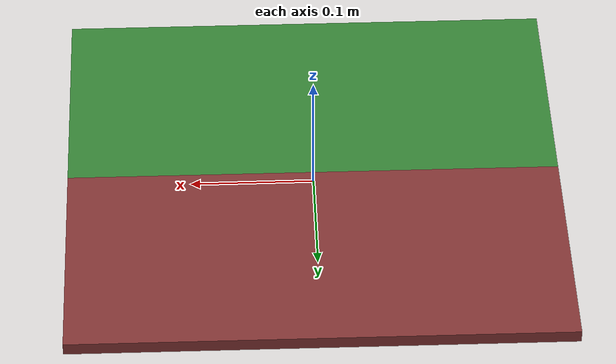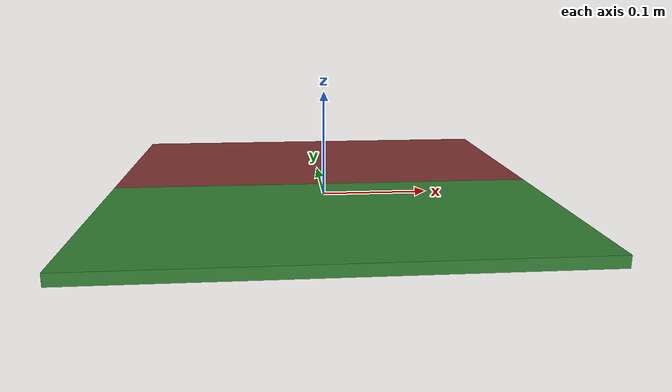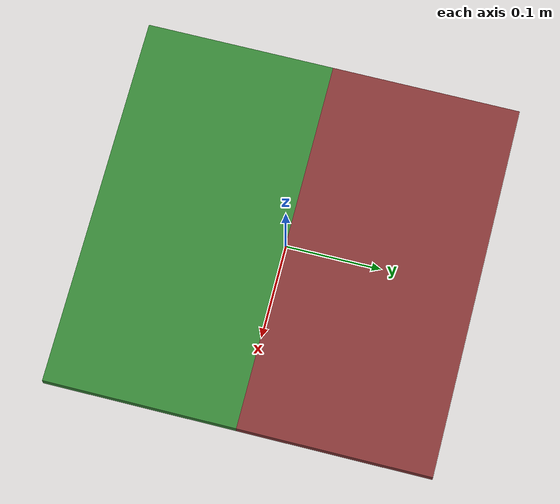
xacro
<?xml version="1.0"?>
<robot xmlns:xacro="http://www.ros.org/wiki/xacro">
    <xacro:property name="side_length" value="0.4"/>
    <xacro:property name="thickness" value="0.01"/>
    <xacro:property name="a_color_value" value="1.0"/>
    <xacro:property name="density" value="1000"/>

    <material name="front_material">
        <color rgba="0.5 0.2 0.2 ${a_color_value}"/>
    </material>

    <material name="rear_material">
        <color rgba="0.2 0.5 0.2 ${a_color_value}"/>
    </material>

    <link name="base"/>

    <link name="front">
        <visual>
            <origin xyz="0 ${side_length/4.0} ${thickness/2.0}"/>
            <geometry>
                <box size="${side_length} ${side_length/2.0} ${thickness}"/>
            </geometry>
            <material name="front_material"/>
        </visual>
        <collision>
            <origin xyz="0 ${side_length/4.0} ${thickness/2.0}"/>
            <geometry>
                <box size="${side_length} ${side_length/2.0} ${thickness}"/>
            </geometry>
        </collision>
        <inertial>
            <density value="${density}"/>
        </inertial>
    </link>

    <link name="rear">
        <visual>
            <origin xyz="0 ${side_length/-4.0} ${thickness/2.0}"/>
            <geometry>
                <box size="${side_length} ${side_length/2.0} ${thickness}"/>
            </geometry>
            <material name="rear_material"/>
        </visual>
        <collision>
            <origin xyz="0 ${side_length/-4.0} ${thickness/2.0}"/>
            <geometry>
                <box size="${side_length} ${side_length/2.0} ${thickness}"/>
            </geometry>
        </collision>
        <inertial>
            <density value="${density}"/>
        </inertial>
    </link>

    <joint name="front_joint" type="fixed">
        <parent link="base"/>
        <child link="front"/>
    </joint>

    <joint name="rear_joint" type="fixed">
        <parent link="base"/>
        <child link="rear"/>
    </joint>

</robot>
